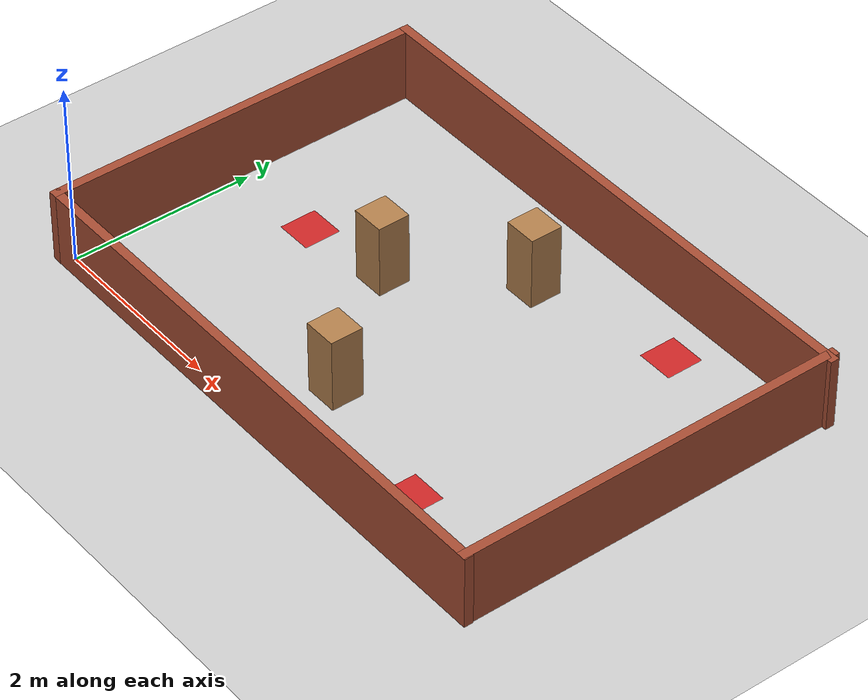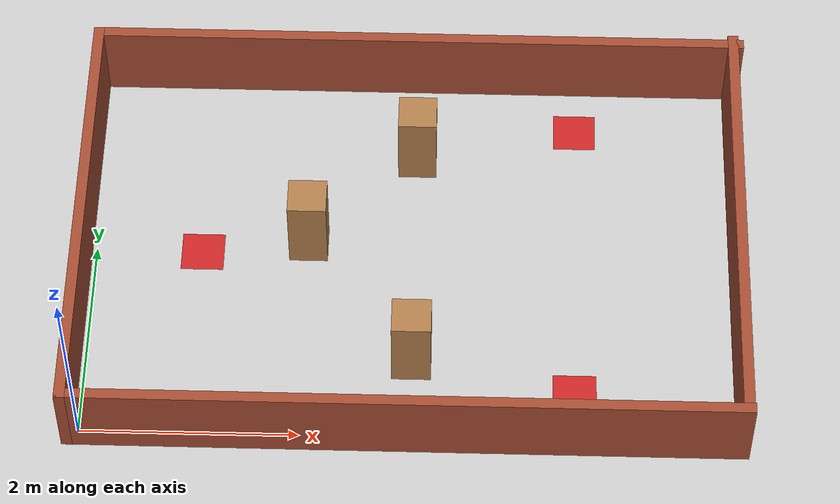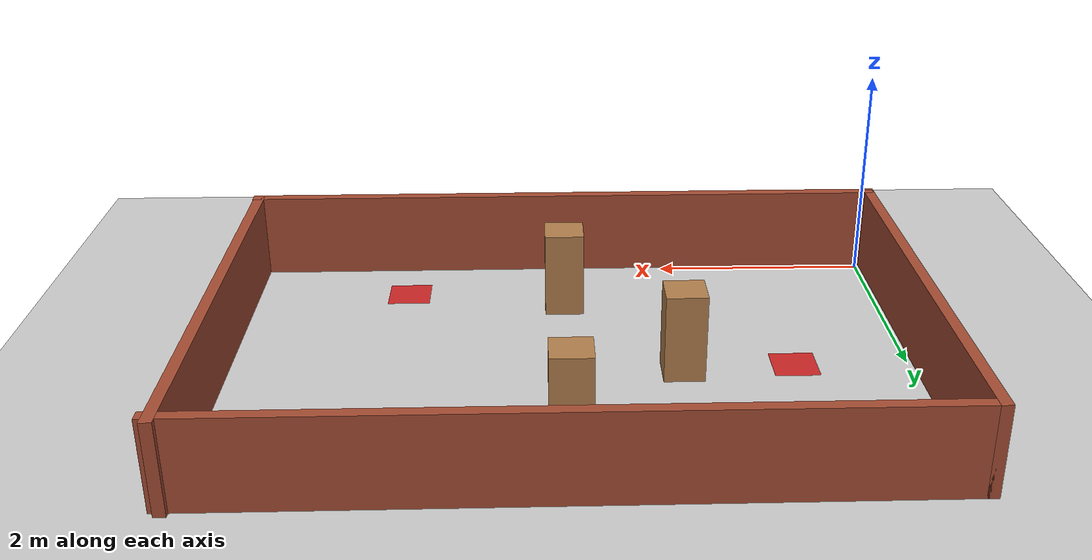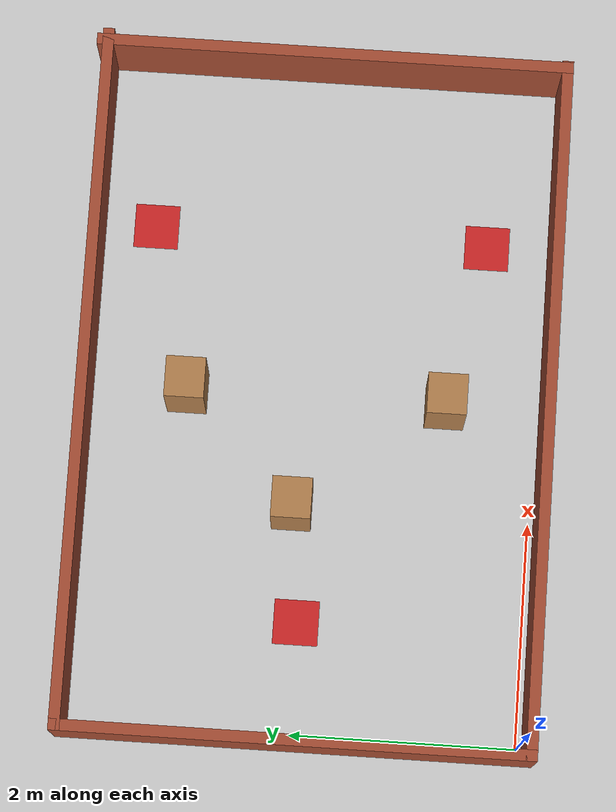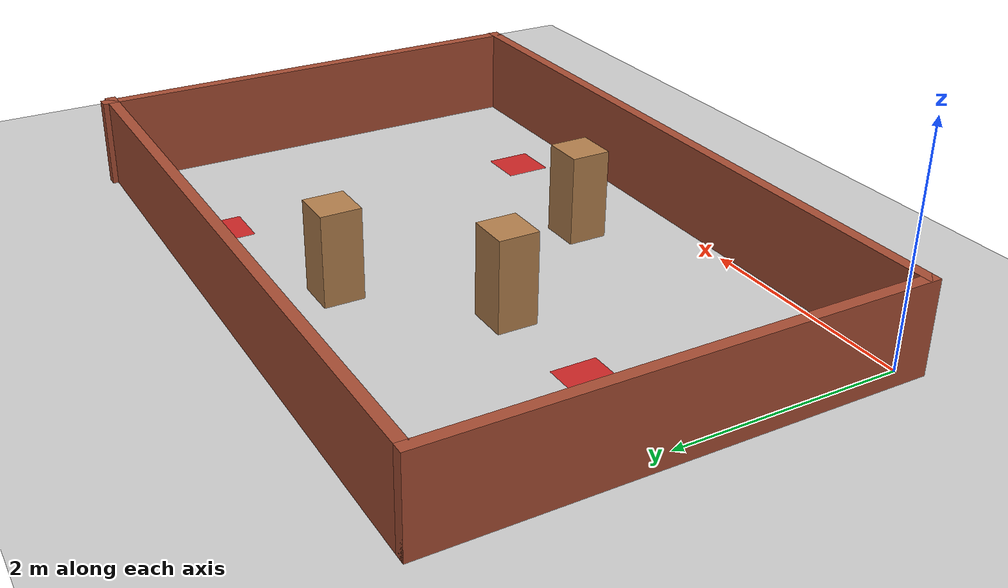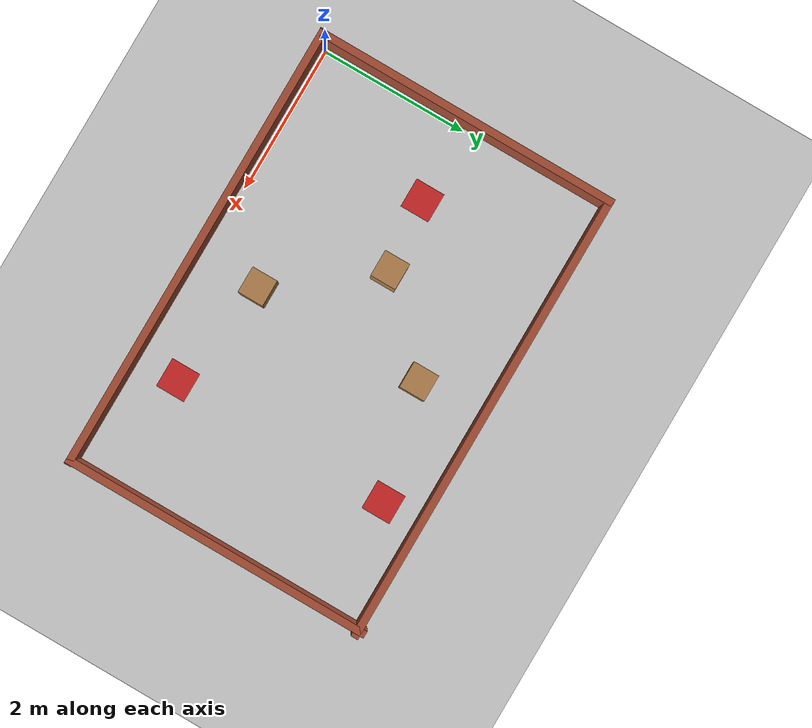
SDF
<sdf version="1.6">
 <world name="default">
  <light name="sun" type="directional">
   <pose>0 0 10 0 -0 0</pose>
   <diffuse>0.8 0.8 0.8 1</diffuse>
   <specular>0.2 0.2 0.2 1</specular>
   <attenuation>
    <range>1000</range>
    <constant>0.9</constant>
    <linear>0.01</linear>
    <quadratic>0.001</quadratic>
   </attenuation>
   <direction>-0.5 0.1 -0.9</direction>
  </light>
  <model name="ground_plane">
   <static>1</static>
   <link name="link">
    <collision name="collision">
     <geometry><plane><normal>0 0 1</normal><size>100 100</size></plane></geometry>
     <surface><friction><ode><mu>100</mu><mu2>50</mu2></ode></friction></surface>
    </collision>
    <visual name="visual">
     <cast_shadows>0</cast_shadows>
     <geometry><plane><normal>0 0 1</normal><size>100 100</size></plane></geometry>
     <material>
      <script><uri>file://media/materials/scripts/gazebo.material</uri><name>Gazebo/Grey</name></script>
     </material>
    </visual>
   </link>
  </model>
  <gravity>0 0 -9.8</gravity>
  <magnetic_field>6e-06 2.3e-05 -4.2e-05</magnetic_field>
  <atmosphere type="adiabatic"/>
  <physics name="default_physics" default="0" type="ode">
   <max_step_size>0.001</max_step_size>
   <real_time_factor>1</real_time_factor>
   <real_time_update_rate>1000</real_time_update_rate>
  </physics>
  <scene><ambient>0.4 0.4 0.4 1</ambient><background>0.7 0.7 0.7 1</background><shadows>1</shadows></scene>
  <audio><device>default</device></audio>
  <spherical_coordinates>
   <surface_model>EARTH_WGS84</surface_model>
   <latitude_deg>0</latitude_deg>
   <longitude_deg>0</longitude_deg>
   <elevation>0</elevation>
   <heading_deg>0</heading_deg>
  </spherical_coordinates>
  <model name="4x6wall">
   <pose>2.98243 1.97651 0 0 -0 0</pose>
   <link name="Wall_0">
    <collision name="Wall_0_Collision">
     <geometry><box><size>6.2 0.1 0.8</size></box></geometry>
     <pose>0 0 0.4 0 -0 0</pose>
    </collision>
    <visual name="Wall_0_Visual">
     <pose>0 0 0.4 0 -0 0</pose>
     <geometry><box><size>6.2 0.1 0.8</size></box></geometry>
     <material>
      <script><uri>file://media/materials/scripts/gazebo.material</uri><name>Gazebo/Bricks</name></script>
      <ambient>1 1 1 1</ambient>
     </material>
     <meta><layer>0</layer></meta>
    </visual>
    <pose>-0.015 -2.075 0 0 -0 3.14159</pose>
   </link>
   <link name="Wall_2">
    <collision name="Wall_2_Collision">
     <geometry><box><size>4.2 0.1 0.8</size></box></geometry>
     <pose>0 0 0.4 0 -0 0</pose>
    </collision>
    <visual name="Wall_2_Visual">
     <pose>0 0 0.4 0 -0 0</pose>
     <geometry><box><size>4.2 0.1 0.8</size></box></geometry>
     <material>
      <script><uri>file://media/materials/scripts/gazebo.material</uri><name>Gazebo/Bricks</name></script>
      <ambient>1 1 1 1</ambient>
     </material>
     <meta><layer>0</layer></meta>
    </visual>
    <pose>-3.075 -0.025 0 0 -0 1.5708</pose>
   </link>
   <link name="Wall_4">
    <collision name="Wall_4_Collision">
     <geometry><box><size>4.25 0.1 0.8</size></box></geometry>
     <pose>0 0 0.4 0 -0 0</pose>
    </collision>
    <visual name="Wall_4_Visual">
     <pose>0 0 0.4 0 -0 0</pose>
     <geometry><box><size>4.25 0.1 0.8</size></box></geometry>
     <material>
      <script><uri>file://media/materials/scripts/gazebo.material</uri><name>Gazebo/Bricks</name></script>
      <ambient>1 1 1 1</ambient>
     </material>
     <meta><layer>0</layer></meta>
    </visual>
    <pose>3.025 -0 0 0 -0 1.5708</pose>
   </link>
   <link name="Wall_6">
    <collision name="Wall_6_Collision">
     <geometry><box><size>6.25 0.1 0.8</size></box></geometry>
     <pose>0 0 0.4 0 -0 0</pose>
    </collision>
    <visual name="Wall_6_Visual">
     <pose>0 0 0.4 0 -0 0</pose>
     <geometry><box><size>6.25 0.1 0.8</size></box></geometry>
     <material>
      <script><uri>file://media/materials/scripts/gazebo.material</uri><name>Gazebo/Bricks</name></script>
      <ambient>1 1 1 1</ambient>
     </material>
     <meta><layer>0</layer></meta>
    </visual>
    <pose>0 2.025 0 0 -0 0</pose>
   </link>
   <static>1</static>
  </model>
  <model name="target_1">
   <link name="link_0">
    <inertial>
     <mass>1</mass>
     <inertia>
      <ixx>0.166667</ixx>
      <ixy>0</ixy>
      <ixz>0</ixz>
      <iyy>0.166667</iyy>
      <iyz>0</iyz>
      <izz>0.166667</izz>
     </inertia>
    </inertial>
    <visual name="visual">
     <geometry><box><size>0.4 0.4 0.0001</size></box></geometry>
     <material>
      <lighting>1</lighting>
      <script><uri>file://media/materials/scripts/gazebo.material</uri><name>Gazebo/Red</name></script>
      <shader type="vertex"><normal_map>__default__</normal_map></shader>
      <ambient>0.3 0.3 0.3 1</ambient>
      <diffuse>0.7 0.7 0.7 1</diffuse>
      <specular>0.01 0.01 0.01 1</specular>
      <emissive>0 0 0 1</emissive>
     </material>
    </visual>
    <collision name="collision">
     <geometry><box><size>0.4 0.4 0.0001</size></box></geometry>
     <surface>
      <friction>
       <ode><mu>1</mu><mu2>1</mu2><fdir1>0 0 0</fdir1><slip1>0</slip1><slip2>0</slip2></ode>
       <torsional>
        <coefficient>1</coefficient>
        <patch_radius>0</patch_radius>
        <surface_radius>0</surface_radius>
        <use_patch_radius>1</use_patch_radius>
        <ode><slip>0</slip></ode>
       </torsional>
      </friction>
      <bounce><restitution_coefficient>0</restitution_coefficient><threshold>1e+06</threshold></bounce>
      <contact>
       <collide_without_contact>0</collide_without_contact>
       <collide_without_contact_bitmask>1</collide_without_contact_bitmask>
       <collide_bitmask>1</collide_bitmask>
       <ode>
        <soft_cfm>0</soft_cfm>
        <soft_erp>0.2</soft_erp>
        <kp>1e+13</kp>
        <kd>1</kd>
        <max_vel>0.01</max_vel>
        <min_depth>0</min_depth>
       </ode>
       <bullet>
        <split_impulse>1</split_impulse>
        <split_impulse_penetration_threshold>-0.01</split_impulse_penetration_threshold>
        <soft_cfm>0</soft_cfm>
        <soft_erp>0.2</soft_erp>
        <kp>1e+13</kp>
        <kd>1</kd>
       </bullet>
      </contact>
     </surface>
    </collision>
   </link>
   <static>0</static>
   <pose>4.5 0.5 5e-05 0 -0 0</pose>
  </model>
  <model name="target_1_1">
   <link name="link_0">
    <inertial>
     <mass>1</mass>
     <inertia>
      <ixx>0.166667</ixx>
      <ixy>0</ixy>
      <ixz>0</ixz>
      <iyy>0.166667</iyy>
      <iyz>0</iyz>
      <izz>0.166667</izz>
     </inertia>
    </inertial>
    <visual name="visual">
     <geometry><box><size>0.4 0.4 0.0001</size></box></geometry>
     <material>
      <lighting>1</lighting>
      <script><uri>file://media/materials/scripts/gazebo.material</uri><name>Gazebo/Red</name></script>
      <shader type="vertex"><normal_map>__default__</normal_map></shader>
      <ambient>0.3 0.3 0.3 1</ambient>
      <diffuse>0.7 0.7 0.7 1</diffuse>
      <specular>0.01 0.01 0.01 1</specular>
      <emissive>0 0 0 1</emissive>
     </material>
    </visual>
    <collision name="collision">
     <geometry><box><size>0.4 0.4 0.0001</size></box></geometry>
     <surface>
      <friction>
       <ode><mu>1</mu><mu2>1</mu2><fdir1>0 0 0</fdir1><slip1>0</slip1><slip2>0</slip2></ode>
       <torsional>
        <coefficient>1</coefficient>
        <patch_radius>0</patch_radius>
        <surface_radius>0</surface_radius>
        <use_patch_radius>1</use_patch_radius>
        <ode><slip>0</slip></ode>
       </torsional>
      </friction>
      <bounce><restitution_coefficient>0</restitution_coefficient><threshold>1e+06</threshold></bounce>
      <contact>
       <collide_without_contact>0</collide_without_contact>
       <collide_without_contact_bitmask>1</collide_without_contact_bitmask>
       <collide_bitmask>1</collide_bitmask>
       <ode>
        <soft_cfm>0</soft_cfm>
        <soft_erp>0.2</soft_erp>
        <kp>1e+13</kp>
        <kd>1</kd>
        <max_vel>0.01</max_vel>
        <min_depth>0</min_depth>
       </ode>
       <bullet>
        <split_impulse>1</split_impulse>
        <split_impulse_penetration_threshold>-0.01</split_impulse_penetration_threshold>
        <soft_cfm>0</soft_cfm>
        <soft_erp>0.2</soft_erp>
        <kp>1e+13</kp>
        <kd>1</kd>
       </bullet>
      </contact>
     </surface>
    </collision>
   </link>
   <static>0</static>
   <pose>4.51152 3.49529 5e-05 0 -0 0</pose>
  </model>
  <model name="target_1_0">
   <link name="link_0">
    <inertial>
     <mass>1</mass>
     <inertia>
      <ixx>0.166667</ixx>
      <ixy>0</ixy>
      <ixz>0</ixz>
      <iyy>0.166667</iyy>
      <iyz>0</iyz>
      <izz>0.166667</izz>
     </inertia>
    </inertial>
    <visual name="visual">
     <geometry><box><size>0.4 0.4 0.0001</size></box></geometry>
     <material>
      <lighting>1</lighting>
      <script><uri>file://media/materials/scripts/gazebo.material</uri><name>Gazebo/Red</name></script>
      <shader type="vertex"><normal_map>__default__</normal_map></shader>
      <ambient>0.3 0.3 0.3 1</ambient>
      <diffuse>0.7 0.7 0.7 1</diffuse>
      <specular>0.01 0.01 0.01 1</specular>
      <emissive>0 0 0 1</emissive>
     </material>
    </visual>
    <collision name="collision">
     <geometry><box><size>0.4 0.4 0.0001</size></box></geometry>
     <surface>
      <friction>
       <ode><mu>1</mu><mu2>1</mu2><fdir1>0 0 0</fdir1><slip1>0</slip1><slip2>0</slip2></ode>
       <torsional>
        <coefficient>1</coefficient>
        <patch_radius>0</patch_radius>
        <surface_radius>0</surface_radius>
        <use_patch_radius>1</use_patch_radius>
        <ode><slip>0</slip></ode>
       </torsional>
      </friction>
      <bounce><restitution_coefficient>0</restitution_coefficient><threshold>1e+06</threshold></bounce>
      <contact>
       <collide_without_contact>0</collide_without_contact>
       <collide_without_contact_bitmask>1</collide_without_contact_bitmask>
       <collide_bitmask>1</collide_bitmask>
       <ode>
        <soft_cfm>0</soft_cfm>
        <soft_erp>0.2</soft_erp>
        <kp>1e+13</kp>
        <kd>1</kd>
        <max_vel>0.01</max_vel>
        <min_depth>0</min_depth>
       </ode>
       <bullet>
        <split_impulse>1</split_impulse>
        <split_impulse_penetration_threshold>-0.01</split_impulse_penetration_threshold>
        <soft_cfm>0</soft_cfm>
        <soft_erp>0.2</soft_erp>
        <kp>1e+13</kp>
        <kd>1</kd>
       </bullet>
      </contact>
     </surface>
    </collision>
   </link>
   <static>0</static>
   <pose>1 2 5e-05 0 -0 0</pose>
  </model>
  <model name="obs_99">
   <pose>3.0 0.8 0 0 -0 0</pose>
   <link name="Wall_0">
    <collision name="Wall_0_Collision">
     <geometry><box><size>0.3 0.3 0.8</size></box></geometry>
     <pose>0 0 0.4 0 -0 0</pose>
    </collision>
    <visual name="Wall_0_Visual">
     <pose>0 0 0.4 0 -0 0</pose>
     <geometry><box><size>0.36 0.35 0.8</size></box></geometry>
     <material>
      <script><uri>file://media/materials/scripts/gazebo.material</uri><name>Gazebo/Wood</name></script>
      <ambient>0.996078 0.47451 0.0196078 1</ambient>
     </material>
     <meta><layer>0</layer></meta>
    </visual>
    <pose>0 0 0 0 -0 3.14159</pose>
   </link>
   <static>1</static>
  </model>
  <model name="obs_99_0">
   <pose>2.0 2.1 0 0 -0 0</pose>
   <link name="Wall_0">
    <collision name="Wall_0_Collision">
     <geometry><box><size>0.3 0.3 0.8</size></box></geometry>
     <pose>0 0 0.4 0 -0 0</pose>
    </collision>
    <visual name="Wall_0_Visual">
     <pose>0 0 0.4 0 -0 0</pose>
     <geometry><box><size>0.36 0.35 0.8</size></box></geometry>
     <material>
      <script><uri>file://media/materials/scripts/gazebo.material</uri><name>Gazebo/Wood</name></script>
      <ambient>0.996078 0.47451 0.0196078 1</ambient>
     </material>
     <meta><layer>0</layer></meta>
    </visual>
    <pose>0 0 0 0 -0 3.14159</pose>
   </link>
   <static>1</static>
  </model>
  <model name="obs_99_1">
   <pose>3.0 3.1 0 0 -0 0</pose>
   <link name="Wall_0">
    <collision name="Wall_0_Collision">
     <geometry><box><size>0.3 0.3 0.8</size></box></geometry>
     <pose>0 0 0.4 0 -0 0</pose>
    </collision>
    <visual name="Wall_0_Visual">
     <pose>0 0 0.4 0 -0 0</pose>
     <geometry><box><size>0.36 0.35 0.8</size></box></geometry>
     <material>
      <script><uri>file://media/materials/scripts/gazebo.material</uri><name>Gazebo/Wood</name></script>
      <ambient>0.996078 0.47451 0.0196078 1</ambient>
     </material>
     <meta><layer>0</layer></meta>
    </visual>
    <pose>0 0 0 0 -0 3.14159</pose>
   </link>
   <static>1</static>
  </model>
 </world>
</sdf>
